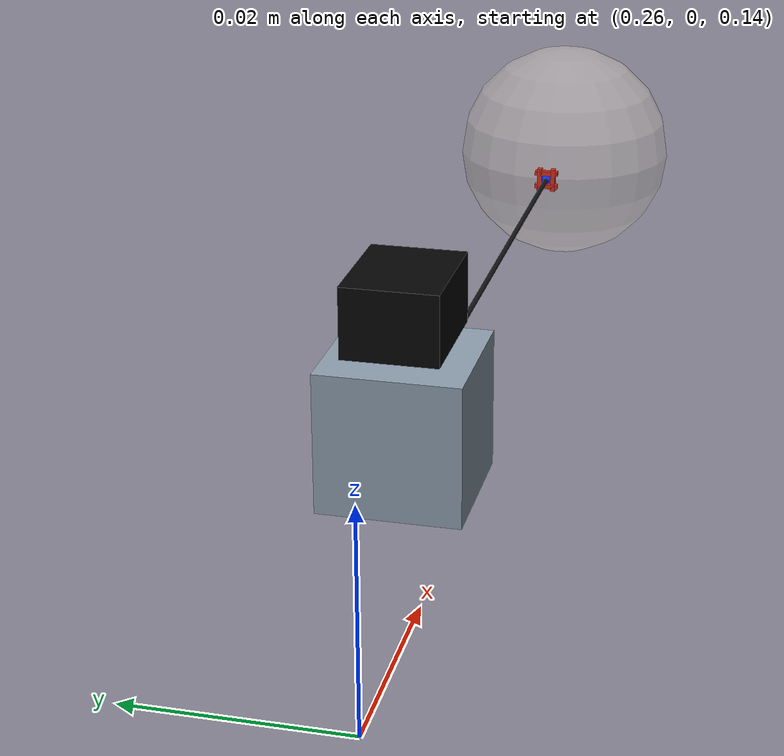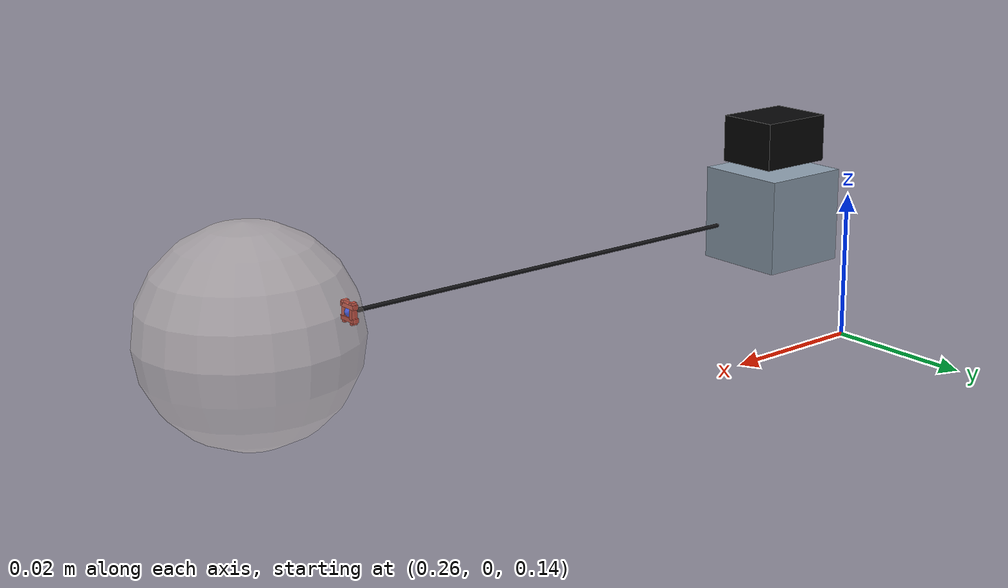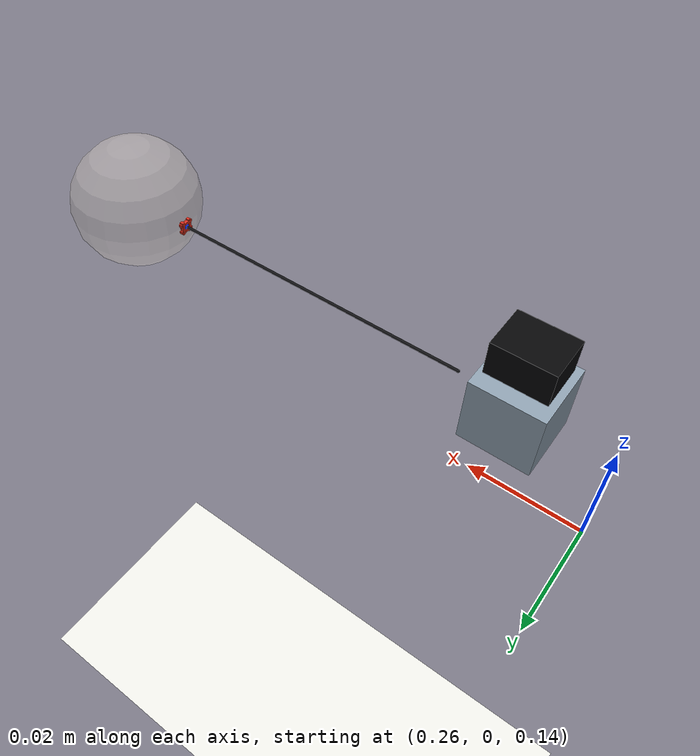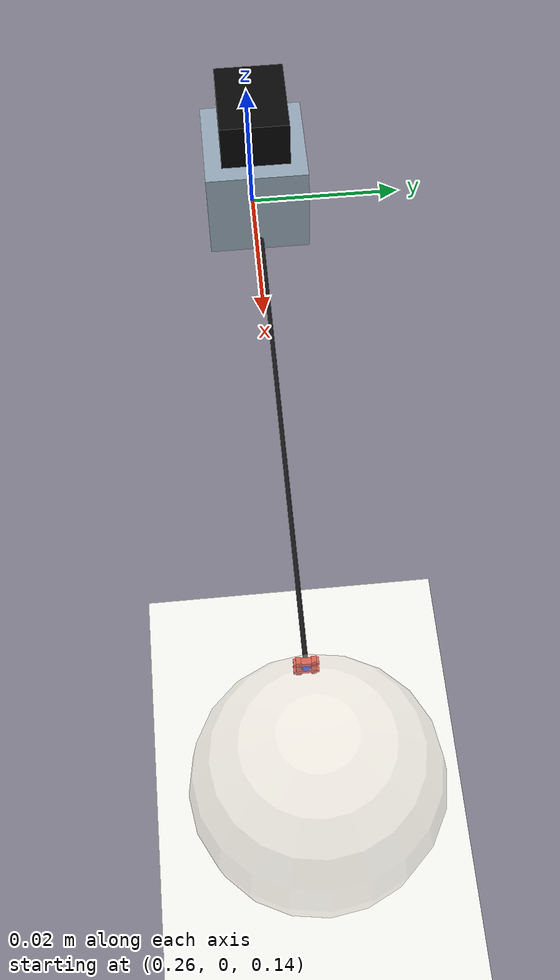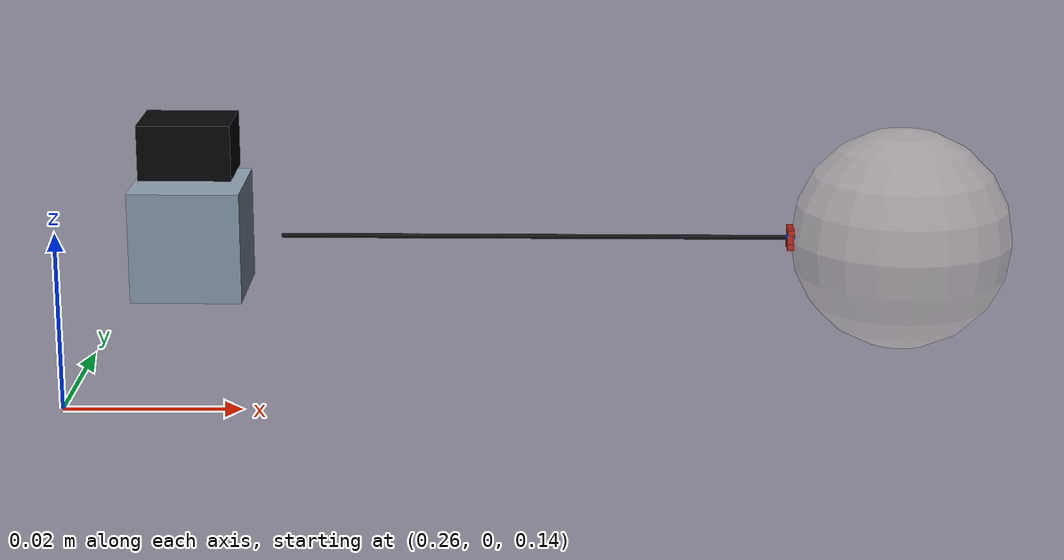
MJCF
<mujoco model="single_arm_ophthalmic_trocar_cartesian_tool">
  <compiler angle="radian" coordinate="local"/>
  <option timestep="0.002" gravity="0 0 0" integrator="implicitfast"/>

  <default>
    <joint damping="0.02" armature="0.0002" limited="true"/>
    <geom margin="0.00015" solref="0.008 1" solimp="0.92 0.97 0.001"/>
  </default>

  <asset>
    <material name="tool_mat" rgba="0.08 0.08 0.09 1"/>
    <material name="port_mat" rgba="0.85 0.18 0.12 1"/>
    <material name="eye_mat" rgba="0.95 0.90 0.84 0.35"/>
    <material name="stage_mat" rgba="0.55 0.62 0.68 1"/>
  </asset>

  <worldbody>
    <light name="key_light" pos="0 -0.5 0.7" dir="0.2 0.7 -1"/>
    <geom name="ground" type="plane" pos="0 0 0" size="1 1 0.01" rgba="0.92 0.92 0.90 1" contype="0" conaffinity="0"/>

    <geom name="eye_surface" type="sphere" pos="0.352 0 0.16" size="0.012" material="eye_mat" contype="0" conaffinity="0"/>
    <geom name="port_wall_y_pos" type="box" pos="0.34 0.00075 0.16" size="0.00035 0.00025 0.00125" material="port_mat" contype="1" conaffinity="1"/>
    <geom name="port_wall_y_neg" type="box" pos="0.34 -0.00075 0.16" size="0.00035 0.00025 0.00125" material="port_mat" contype="1" conaffinity="1"/>
    <geom name="port_wall_z_pos" type="box" pos="0.34 0 0.16075" size="0.00035 0.00125 0.00025" material="port_mat" contype="1" conaffinity="1"/>
    <geom name="port_wall_z_neg" type="box" pos="0.34 0 0.15925" size="0.00035 0.00125 0.00025" material="port_mat" contype="1" conaffinity="1"/>

    <body name="tool_carriage" pos="0.285 0 0.16">
      <joint name="tool_x" type="slide" axis="1 0 0" range="-0.030 0.080"/>
      <joint name="tool_y" type="slide" axis="0 1 0" range="-0.025 0.025"/>
      <joint name="tool_z" type="slide" axis="0 0 1" range="-0.025 0.025"/>
      <geom name="tool_carriage_geom" type="box" pos="-0.010 0 0" size="0.006 0.006 0.006" material="stage_mat" contype="0" conaffinity="0"/>
      <geom name="eye_in_hand_camera_body" type="box" pos="-0.010 0 0.010" size="0.005 0.004 0.003" rgba="0.02 0.02 0.025 1" contype="0" conaffinity="0"/>
      <camera name="eye_in_hand" mode="fixed" pos="-0.010 0 0.010" xyaxes="0 -1 0 0 0 1" fovy="41.9741"/>
      <geom name="instrument_shaft" type="capsule" fromto="0 0 0 0.055 0 0" size="0.000255" material="tool_mat" contype="1" conaffinity="1" density="7800"/>
      <site name="tool_tip" pos="0.055 0 0" size="0.00055" rgba="0.05 0.2 1 1"/>
    </body>
  </worldbody>

  <actuator>
    <position name="tool_x_position" joint="tool_x" kp="800" ctrlrange="-0.030 0.080"/>
    <position name="tool_y_position" joint="tool_y" kp="800" ctrlrange="-0.025 0.025"/>
    <position name="tool_z_position" joint="tool_z" kp="800" ctrlrange="-0.025 0.025"/>
  </actuator>
</mujoco>
